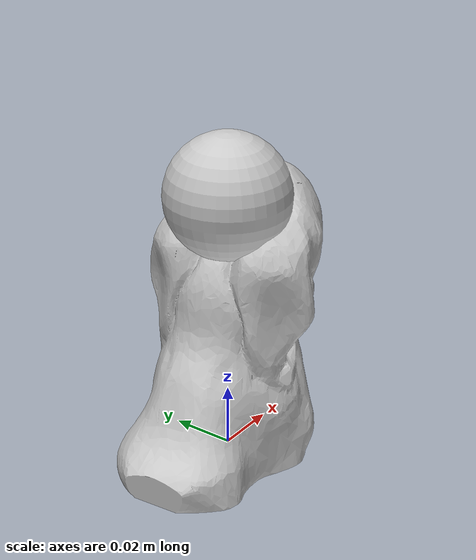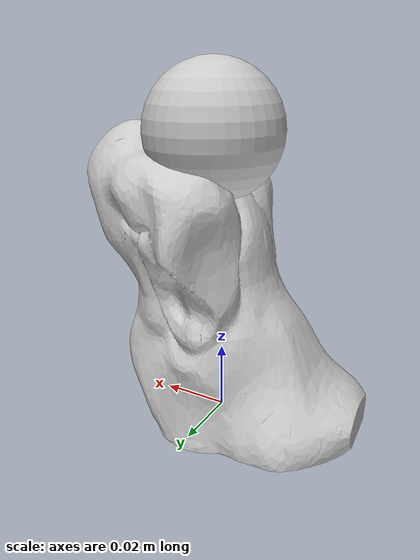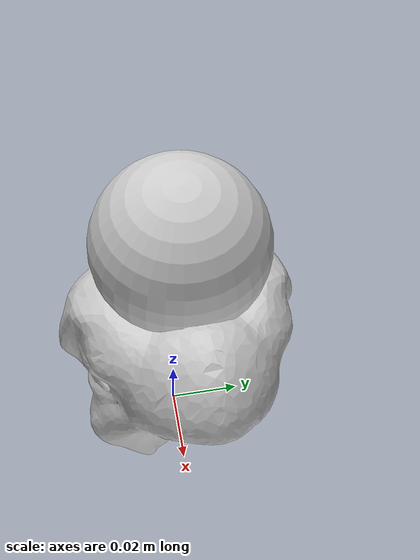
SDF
<?xml version="1.0" ?>
<sdf version="1.6">
  <model name="pawn">
    <pose>0 0 0 0 0 0</pose>
    <static>true</static>
    <link name="body">
      <visual name="visual">
        <geometry>
          <mesh>
            <scale>1.0 1.0 1.0</scale>
            <uri>meshes/pawn.dae</uri>
          </mesh>
        </geometry>
      </visual>
      <collision name="collision">
        <geometry>
          <mesh>
            <scale>1.0 1.0 1.0</scale>
            <uri>meshes/pawn.stl</uri>
          </mesh>
        </geometry>
      </collision>
    </link>
  </model>
</sdf>
